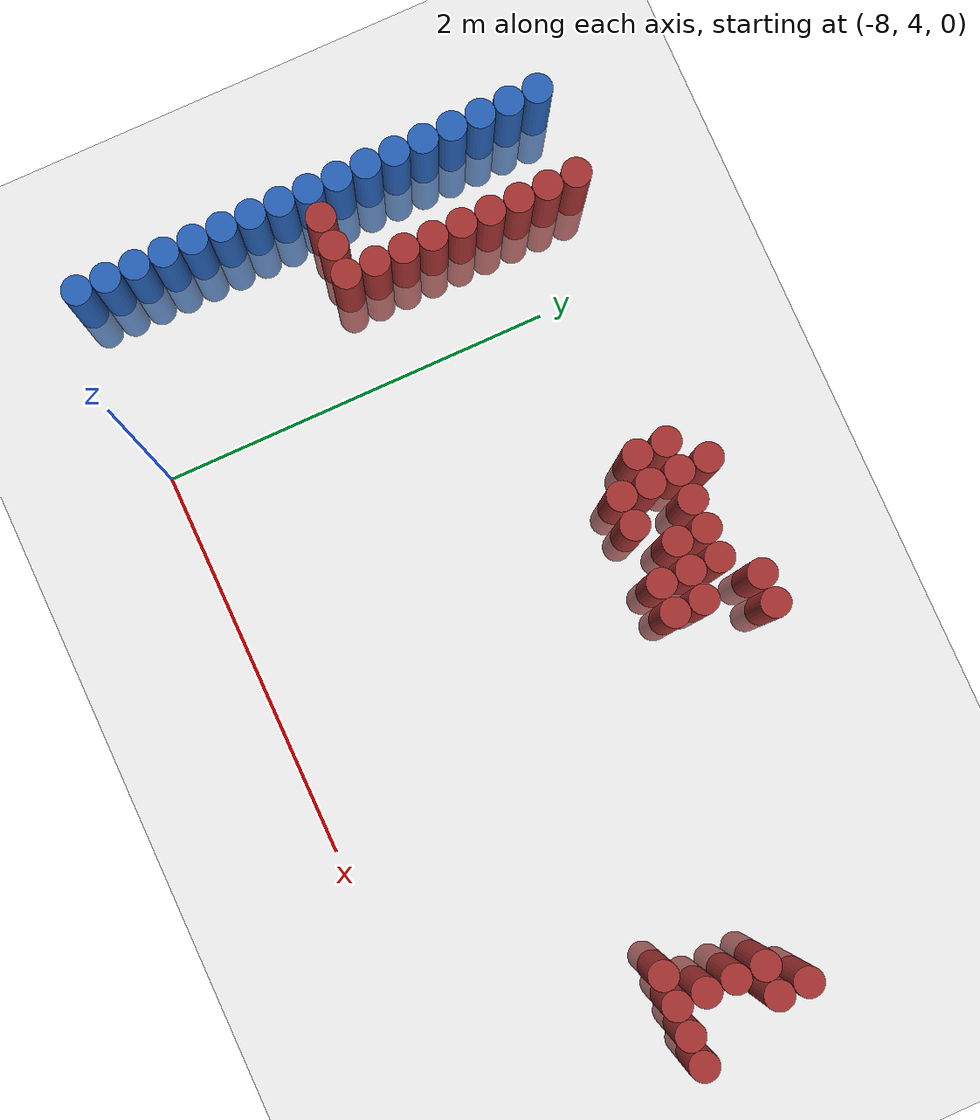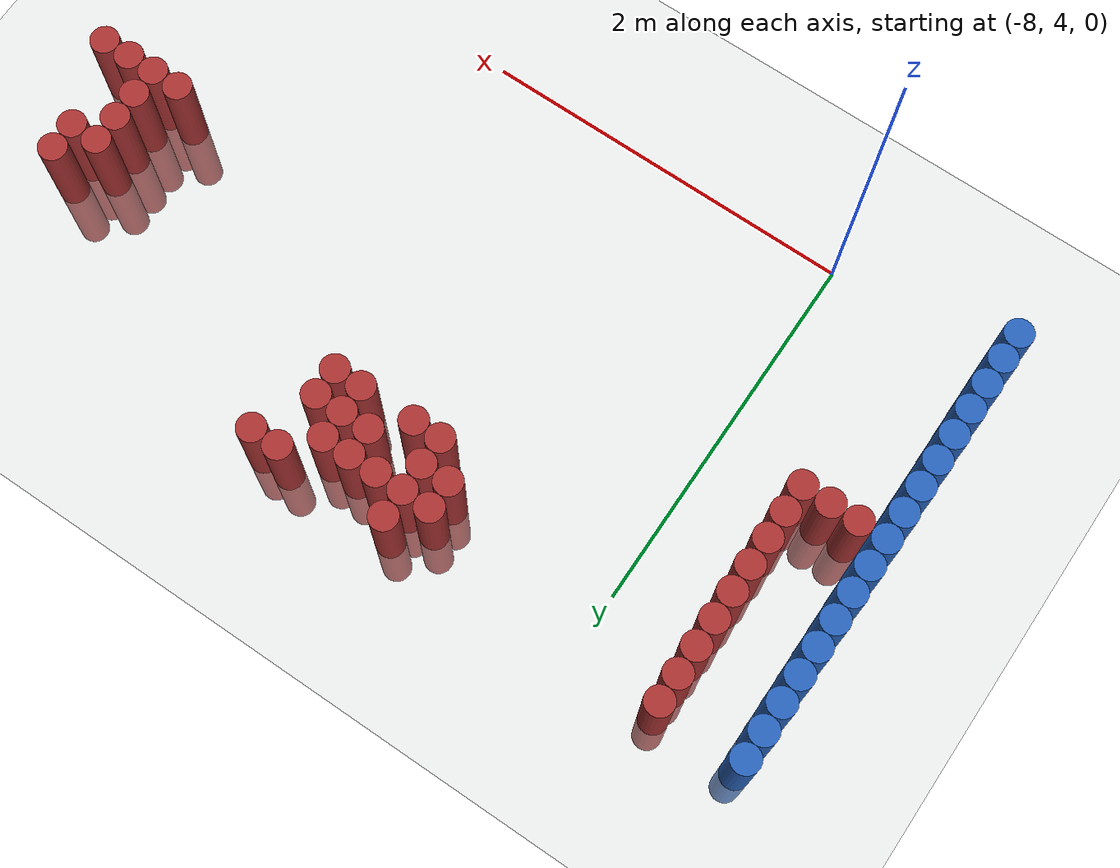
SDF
<sdf version="1.6">
 <world name="default">
  <model name="ground_plane">
   <static>1</static>
   <link name="link">
    <collision name="collision">
     <geometry><plane><normal>0 0 1</normal><size>100 100</size></plane></geometry>
     <surface><friction><ode><mu>100</mu><mu2>50</mu2></ode></friction></surface>
    </collision>
    <visual name="visual">
     <cast_shadows>0</cast_shadows>
     <geometry><plane><normal>0 0 1</normal><size>100 100</size></plane></geometry>
     <material>
      <script><uri>file://media/materials/scripts/gazebo.material</uri><name>Gazebo/Grey</name></script>
     </material>
    </visual>
   </link>
  </model>
  <model name="unit_cylinder_110">
   <static>1</static>
   <pose>-8.925000 3.975000 0.000000 0.000000 0.000000 0.000000</pose>
   <link name="link">
    <inertial>
     <mass>1</mass>
     <inertia><ixx>0.145833</ixx><ixy>0</ixy><ixz>0</ixz><iyy>0.145833</iyy><iyz>0</iyz><izz>0.125</izz></inertia>
    </inertial>
    <collision name="collision">
     <geometry><cylinder><radius>0.075000</radius><length>1</length></cylinder></geometry>
    </collision>
    <visual name="visual">
     <geometry><cylinder><radius>0.075000</radius><length>1</length></cylinder></geometry>
     <material>
      <ambient>0.152000 0.379000 0.720000 1</ambient>
      <diffuse>0.152000 0.379000 0.720000 1</diffuse>
     </material>
     <material>
      <script><name>Gazebo/Grey</name><uri>file://media/materials/scripts/gazebo.material</uri></script>
     </material>
    </visual>
   </link>
  </model>
  <model name="unit_cylinder_112">
   <static>1</static>
   <pose>-8.925000 4.125000 0.000000 0.000000 0.000000 0.000000</pose>
   <link name="link">
    <inertial>
     <mass>1</mass>
     <inertia><ixx>0.145833</ixx><ixy>0</ixy><ixz>0</ixz><iyy>0.145833</iyy><iyz>0</iyz><izz>0.125</izz></inertia>
    </inertial>
    <collision name="collision">
     <geometry><cylinder><radius>0.075000</radius><length>1</length></cylinder></geometry>
    </collision>
    <visual name="visual">
     <geometry><cylinder><radius>0.075000</radius><length>1</length></cylinder></geometry>
     <material>
      <ambient>0.152000 0.379000 0.720000 1</ambient>
      <diffuse>0.152000 0.379000 0.720000 1</diffuse>
     </material>
     <material>
      <script><name>Gazebo/Grey</name><uri>file://media/materials/scripts/gazebo.material</uri></script>
     </material>
    </visual>
   </link>
  </model>
  <model name="unit_cylinder_114">
   <static>1</static>
   <pose>-8.925000 4.275000 0.000000 0.000000 0.000000 0.000000</pose>
   <link name="link">
    <inertial>
     <mass>1</mass>
     <inertia><ixx>0.145833</ixx><ixy>0</ixy><ixz>0</ixz><iyy>0.145833</iyy><iyz>0</iyz><izz>0.125</izz></inertia>
    </inertial>
    <collision name="collision">
     <geometry><cylinder><radius>0.075000</radius><length>1</length></cylinder></geometry>
    </collision>
    <visual name="visual">
     <geometry><cylinder><radius>0.075000</radius><length>1</length></cylinder></geometry>
     <material>
      <ambient>0.152000 0.379000 0.720000 1</ambient>
      <diffuse>0.152000 0.379000 0.720000 1</diffuse>
     </material>
     <material>
      <script><name>Gazebo/Grey</name><uri>file://media/materials/scripts/gazebo.material</uri></script>
     </material>
    </visual>
   </link>
  </model>
  <model name="unit_cylinder_116">
   <static>1</static>
   <pose>-8.925000 4.425000 0.000000 0.000000 0.000000 0.000000</pose>
   <link name="link">
    <inertial>
     <mass>1</mass>
     <inertia><ixx>0.145833</ixx><ixy>0</ixy><ixz>0</ixz><iyy>0.145833</iyy><iyz>0</iyz><izz>0.125</izz></inertia>
    </inertial>
    <collision name="collision">
     <geometry><cylinder><radius>0.075000</radius><length>1</length></cylinder></geometry>
    </collision>
    <visual name="visual">
     <geometry><cylinder><radius>0.075000</radius><length>1</length></cylinder></geometry>
     <material>
      <ambient>0.152000 0.379000 0.720000 1</ambient>
      <diffuse>0.152000 0.379000 0.720000 1</diffuse>
     </material>
     <material>
      <script><name>Gazebo/Grey</name><uri>file://media/materials/scripts/gazebo.material</uri></script>
     </material>
    </visual>
   </link>
  </model>
  <model name="unit_cylinder_118">
   <static>1</static>
   <pose>-8.925000 4.575000 0.000000 0.000000 0.000000 0.000000</pose>
   <link name="link">
    <inertial>
     <mass>1</mass>
     <inertia><ixx>0.145833</ixx><ixy>0</ixy><ixz>0</ixz><iyy>0.145833</iyy><iyz>0</iyz><izz>0.125</izz></inertia>
    </inertial>
    <collision name="collision">
     <geometry><cylinder><radius>0.075000</radius><length>1</length></cylinder></geometry>
    </collision>
    <visual name="visual">
     <geometry><cylinder><radius>0.075000</radius><length>1</length></cylinder></geometry>
     <material>
      <ambient>0.152000 0.379000 0.720000 1</ambient>
      <diffuse>0.152000 0.379000 0.720000 1</diffuse>
     </material>
     <material>
      <script><name>Gazebo/Grey</name><uri>file://media/materials/scripts/gazebo.material</uri></script>
     </material>
    </visual>
   </link>
  </model>
  <model name="unit_cylinder_120">
   <static>1</static>
   <pose>-8.925000 4.725000 0.000000 0.000000 0.000000 0.000000</pose>
   <link name="link">
    <inertial>
     <mass>1</mass>
     <inertia><ixx>0.145833</ixx><ixy>0</ixy><ixz>0</ixz><iyy>0.145833</iyy><iyz>0</iyz><izz>0.125</izz></inertia>
    </inertial>
    <collision name="collision">
     <geometry><cylinder><radius>0.075000</radius><length>1</length></cylinder></geometry>
    </collision>
    <visual name="visual">
     <geometry><cylinder><radius>0.075000</radius><length>1</length></cylinder></geometry>
     <material>
      <ambient>0.152000 0.379000 0.720000 1</ambient>
      <diffuse>0.152000 0.379000 0.720000 1</diffuse>
     </material>
     <material>
      <script><name>Gazebo/Grey</name><uri>file://media/materials/scripts/gazebo.material</uri></script>
     </material>
    </visual>
   </link>
  </model>
  <model name="unit_cylinder_122">
   <static>1</static>
   <pose>-8.925000 4.875000 0.000000 0.000000 0.000000 0.000000</pose>
   <link name="link">
    <inertial>
     <mass>1</mass>
     <inertia><ixx>0.145833</ixx><ixy>0</ixy><ixz>0</ixz><iyy>0.145833</iyy><iyz>0</iyz><izz>0.125</izz></inertia>
    </inertial>
    <collision name="collision">
     <geometry><cylinder><radius>0.075000</radius><length>1</length></cylinder></geometry>
    </collision>
    <visual name="visual">
     <geometry><cylinder><radius>0.075000</radius><length>1</length></cylinder></geometry>
     <material>
      <ambient>0.152000 0.379000 0.720000 1</ambient>
      <diffuse>0.152000 0.379000 0.720000 1</diffuse>
     </material>
     <material>
      <script><name>Gazebo/Grey</name><uri>file://media/materials/scripts/gazebo.material</uri></script>
     </material>
    </visual>
   </link>
  </model>
  <model name="unit_cylinder_124">
   <static>1</static>
   <pose>-8.925000 5.025000 0.000000 0.000000 0.000000 0.000000</pose>
   <link name="link">
    <inertial>
     <mass>1</mass>
     <inertia><ixx>0.145833</ixx><ixy>0</ixy><ixz>0</ixz><iyy>0.145833</iyy><iyz>0</iyz><izz>0.125</izz></inertia>
    </inertial>
    <collision name="collision">
     <geometry><cylinder><radius>0.075000</radius><length>1</length></cylinder></geometry>
    </collision>
    <visual name="visual">
     <geometry><cylinder><radius>0.075000</radius><length>1</length></cylinder></geometry>
     <material>
      <ambient>0.152000 0.379000 0.720000 1</ambient>
      <diffuse>0.152000 0.379000 0.720000 1</diffuse>
     </material>
     <material>
      <script><name>Gazebo/Grey</name><uri>file://media/materials/scripts/gazebo.material</uri></script>
     </material>
    </visual>
   </link>
  </model>
  <model name="unit_cylinder_125">
   <static>1</static>
   <pose>-8.925000 5.175000 0.000000 0.000000 0.000000 0.000000</pose>
   <link name="link">
    <inertial>
     <mass>1</mass>
     <inertia><ixx>0.145833</ixx><ixy>0</ixy><ixz>0</ixz><iyy>0.145833</iyy><iyz>0</iyz><izz>0.125</izz></inertia>
    </inertial>
    <collision name="collision">
     <geometry><cylinder><radius>0.075000</radius><length>1</length></cylinder></geometry>
    </collision>
    <visual name="visual">
     <geometry><cylinder><radius>0.075000</radius><length>1</length></cylinder></geometry>
     <material>
      <ambient>0.152000 0.379000 0.720000 1</ambient>
      <diffuse>0.152000 0.379000 0.720000 1</diffuse>
     </material>
     <material>
      <script><name>Gazebo/Grey</name><uri>file://media/materials/scripts/gazebo.material</uri></script>
     </material>
    </visual>
   </link>
  </model>
  <model name="unit_cylinder_126">
   <static>1</static>
   <pose>-8.925000 5.325000 0.000000 0.000000 0.000000 0.000000</pose>
   <link name="link">
    <inertial>
     <mass>1</mass>
     <inertia><ixx>0.145833</ixx><ixy>0</ixy><ixz>0</ixz><iyy>0.145833</iyy><iyz>0</iyz><izz>0.125</izz></inertia>
    </inertial>
    <collision name="collision">
     <geometry><cylinder><radius>0.075000</radius><length>1</length></cylinder></geometry>
    </collision>
    <visual name="visual">
     <geometry><cylinder><radius>0.075000</radius><length>1</length></cylinder></geometry>
     <material>
      <ambient>0.152000 0.379000 0.720000 1</ambient>
      <diffuse>0.152000 0.379000 0.720000 1</diffuse>
     </material>
     <material>
      <script><name>Gazebo/Grey</name><uri>file://media/materials/scripts/gazebo.material</uri></script>
     </material>
    </visual>
   </link>
  </model>
  <model name="unit_cylinder_127">
   <static>1</static>
   <pose>-8.925000 5.475000 0.000000 0.000000 0.000000 0.000000</pose>
   <link name="link">
    <inertial>
     <mass>1</mass>
     <inertia><ixx>0.145833</ixx><ixy>0</ixy><ixz>0</ixz><iyy>0.145833</iyy><iyz>0</iyz><izz>0.125</izz></inertia>
    </inertial>
    <collision name="collision">
     <geometry><cylinder><radius>0.075000</radius><length>1</length></cylinder></geometry>
    </collision>
    <visual name="visual">
     <geometry><cylinder><radius>0.075000</radius><length>1</length></cylinder></geometry>
     <material>
      <ambient>0.152000 0.379000 0.720000 1</ambient>
      <diffuse>0.152000 0.379000 0.720000 1</diffuse>
     </material>
     <material>
      <script><name>Gazebo/Grey</name><uri>file://media/materials/scripts/gazebo.material</uri></script>
     </material>
    </visual>
   </link>
  </model>
  <model name="unit_cylinder_128">
   <static>1</static>
   <pose>-8.925000 5.625000 0.000000 0.000000 0.000000 0.000000</pose>
   <link name="link">
    <inertial>
     <mass>1</mass>
     <inertia><ixx>0.145833</ixx><ixy>0</ixy><ixz>0</ixz><iyy>0.145833</iyy><iyz>0</iyz><izz>0.125</izz></inertia>
    </inertial>
    <collision name="collision">
     <geometry><cylinder><radius>0.075000</radius><length>1</length></cylinder></geometry>
    </collision>
    <visual name="visual">
     <geometry><cylinder><radius>0.075000</radius><length>1</length></cylinder></geometry>
     <material>
      <ambient>0.152000 0.379000 0.720000 1</ambient>
      <diffuse>0.152000 0.379000 0.720000 1</diffuse>
     </material>
     <material>
      <script><name>Gazebo/Grey</name><uri>file://media/materials/scripts/gazebo.material</uri></script>
     </material>
    </visual>
   </link>
  </model>
  <model name="unit_cylinder_129">
   <static>1</static>
   <pose>-8.925000 5.775000 0.000000 0.000000 0.000000 0.000000</pose>
   <link name="link">
    <inertial>
     <mass>1</mass>
     <inertia><ixx>0.145833</ixx><ixy>0</ixy><ixz>0</ixz><iyy>0.145833</iyy><iyz>0</iyz><izz>0.125</izz></inertia>
    </inertial>
    <collision name="collision">
     <geometry><cylinder><radius>0.075000</radius><length>1</length></cylinder></geometry>
    </collision>
    <visual name="visual">
     <geometry><cylinder><radius>0.075000</radius><length>1</length></cylinder></geometry>
     <material>
      <ambient>0.152000 0.379000 0.720000 1</ambient>
      <diffuse>0.152000 0.379000 0.720000 1</diffuse>
     </material>
     <material>
      <script><name>Gazebo/Grey</name><uri>file://media/materials/scripts/gazebo.material</uri></script>
     </material>
    </visual>
   </link>
  </model>
  <model name="unit_cylinder_130">
   <static>1</static>
   <pose>-8.925000 5.925000 0.000000 0.000000 0.000000 0.000000</pose>
   <link name="link">
    <inertial>
     <mass>1</mass>
     <inertia><ixx>0.145833</ixx><ixy>0</ixy><ixz>0</ixz><iyy>0.145833</iyy><iyz>0</iyz><izz>0.125</izz></inertia>
    </inertial>
    <collision name="collision">
     <geometry><cylinder><radius>0.075000</radius><length>1</length></cylinder></geometry>
    </collision>
    <visual name="visual">
     <geometry><cylinder><radius>0.075000</radius><length>1</length></cylinder></geometry>
     <material>
      <ambient>0.152000 0.379000 0.720000 1</ambient>
      <diffuse>0.152000 0.379000 0.720000 1</diffuse>
     </material>
     <material>
      <script><name>Gazebo/Grey</name><uri>file://media/materials/scripts/gazebo.material</uri></script>
     </material>
    </visual>
   </link>
  </model>
  <model name="unit_cylinder_131">
   <static>1</static>
   <pose>-8.925000 6.075000 0.000000 0.000000 0.000000 0.000000</pose>
   <link name="link">
    <inertial>
     <mass>1</mass>
     <inertia><ixx>0.145833</ixx><ixy>0</ixy><ixz>0</ixz><iyy>0.145833</iyy><iyz>0</iyz><izz>0.125</izz></inertia>
    </inertial>
    <collision name="collision">
     <geometry><cylinder><radius>0.075000</radius><length>1</length></cylinder></geometry>
    </collision>
    <visual name="visual">
     <geometry><cylinder><radius>0.075000</radius><length>1</length></cylinder></geometry>
     <material>
      <ambient>0.152000 0.379000 0.720000 1</ambient>
      <diffuse>0.152000 0.379000 0.720000 1</diffuse>
     </material>
     <material>
      <script><name>Gazebo/Grey</name><uri>file://media/materials/scripts/gazebo.material</uri></script>
     </material>
    </visual>
   </link>
  </model>
  <model name="unit_cylinder_132">
   <static>1</static>
   <pose>-8.925000 6.225000 0.000000 0.000000 0.000000 0.000000</pose>
   <link name="link">
    <inertial>
     <mass>1</mass>
     <inertia><ixx>0.145833</ixx><ixy>0</ixy><ixz>0</ixz><iyy>0.145833</iyy><iyz>0</iyz><izz>0.125</izz></inertia>
    </inertial>
    <collision name="collision">
     <geometry><cylinder><radius>0.075000</radius><length>1</length></cylinder></geometry>
    </collision>
    <visual name="visual">
     <geometry><cylinder><radius>0.075000</radius><length>1</length></cylinder></geometry>
     <material>
      <ambient>0.152000 0.379000 0.720000 1</ambient>
      <diffuse>0.152000 0.379000 0.720000 1</diffuse>
     </material>
     <material>
      <script><name>Gazebo/Grey</name><uri>file://media/materials/scripts/gazebo.material</uri></script>
     </material>
    </visual>
   </link>
  </model>
  <model name="unit_cylinder_133">
   <static>1</static>
   <pose>-8.925000 6.375000 0.000000 0.000000 0.000000 0.000000</pose>
   <link name="link">
    <inertial>
     <mass>1</mass>
     <inertia><ixx>0.145833</ixx><ixy>0</ixy><ixz>0</ixz><iyy>0.145833</iyy><iyz>0</iyz><izz>0.125</izz></inertia>
    </inertial>
    <collision name="collision">
     <geometry><cylinder><radius>0.075000</radius><length>1</length></cylinder></geometry>
    </collision>
    <visual name="visual">
     <geometry><cylinder><radius>0.075000</radius><length>1</length></cylinder></geometry>
     <material>
      <ambient>0.152000 0.379000 0.720000 1</ambient>
      <diffuse>0.152000 0.379000 0.720000 1</diffuse>
     </material>
     <material>
      <script><name>Gazebo/Grey</name><uri>file://media/materials/scripts/gazebo.material</uri></script>
     </material>
    </visual>
   </link>
  </model>
  <model name="unit_cylinder_155">
   <static>1</static>
   <pose>-8.775000 5.175000 0.000000 0.000000 0.000000 0.000000</pose>
   <link name="link">
    <inertial>
     <mass>1</mass>
     <inertia><ixx>0.145833</ixx><ixy>0</ixy><ixz>0</ixz><iyy>0.145833</iyy><iyz>0</iyz><izz>0.125</izz></inertia>
    </inertial>
    <collision name="collision">
     <geometry><cylinder><radius>0.075000</radius><length>1</length></cylinder></geometry>
    </collision>
    <visual name="visual">
     <geometry><cylinder><radius>0.075000</radius><length>1</length></cylinder></geometry>
     <material>
      <ambient>0.648000 0.192000 0.192000 1</ambient>
      <diffuse>0.648000 0.192000 0.192000 1</diffuse>
     </material>
     <material>
      <script><name>Gazebo/Grey</name><uri>file://media/materials/scripts/gazebo.material</uri></script>
     </material>
    </visual>
   </link>
  </model>
  <model name="unit_cylinder_157">
   <static>1</static>
   <pose>-8.625000 5.175000 0.000000 0.000000 0.000000 0.000000</pose>
   <link name="link">
    <inertial>
     <mass>1</mass>
     <inertia><ixx>0.145833</ixx><ixy>0</ixy><ixz>0</ixz><iyy>0.145833</iyy><iyz>0</iyz><izz>0.125</izz></inertia>
    </inertial>
    <collision name="collision">
     <geometry><cylinder><radius>0.075000</radius><length>1</length></cylinder></geometry>
    </collision>
    <visual name="visual">
     <geometry><cylinder><radius>0.075000</radius><length>1</length></cylinder></geometry>
     <material>
      <ambient>0.648000 0.192000 0.192000 1</ambient>
      <diffuse>0.648000 0.192000 0.192000 1</diffuse>
     </material>
     <material>
      <script><name>Gazebo/Grey</name><uri>file://media/materials/scripts/gazebo.material</uri></script>
     </material>
    </visual>
   </link>
  </model>
  <model name="unit_cylinder_159">
   <static>1</static>
   <pose>-8.475000 5.175000 0.000000 0.000000 0.000000 0.000000</pose>
   <link name="link">
    <inertial>
     <mass>1</mass>
     <inertia><ixx>0.145833</ixx><ixy>0</ixy><ixz>0</ixz><iyy>0.145833</iyy><iyz>0</iyz><izz>0.125</izz></inertia>
    </inertial>
    <collision name="collision">
     <geometry><cylinder><radius>0.075000</radius><length>1</length></cylinder></geometry>
    </collision>
    <visual name="visual">
     <geometry><cylinder><radius>0.075000</radius><length>1</length></cylinder></geometry>
     <material>
      <ambient>0.648000 0.192000 0.192000 1</ambient>
      <diffuse>0.648000 0.192000 0.192000 1</diffuse>
     </material>
     <material>
      <script><name>Gazebo/Grey</name><uri>file://media/materials/scripts/gazebo.material</uri></script>
     </material>
    </visual>
   </link>
  </model>
  <model name="unit_cylinder_160">
   <static>1</static>
   <pose>-8.475000 5.325000 0.000000 0.000000 0.000000 0.000000</pose>
   <link name="link">
    <inertial>
     <mass>1</mass>
     <inertia><ixx>0.145833</ixx><ixy>0</ixy><ixz>0</ixz><iyy>0.145833</iyy><iyz>0</iyz><izz>0.125</izz></inertia>
    </inertial>
    <collision name="collision">
     <geometry><cylinder><radius>0.075000</radius><length>1</length></cylinder></geometry>
    </collision>
    <visual name="visual">
     <geometry><cylinder><radius>0.075000</radius><length>1</length></cylinder></geometry>
     <material>
      <ambient>0.648000 0.192000 0.192000 1</ambient>
      <diffuse>0.648000 0.192000 0.192000 1</diffuse>
     </material>
     <material>
      <script><name>Gazebo/Grey</name><uri>file://media/materials/scripts/gazebo.material</uri></script>
     </material>
    </visual>
   </link>
  </model>
  <model name="unit_cylinder_161">
   <static>1</static>
   <pose>-8.475000 5.475000 0.000000 0.000000 0.000000 0.000000</pose>
   <link name="link">
    <inertial>
     <mass>1</mass>
     <inertia><ixx>0.145833</ixx><ixy>0</ixy><ixz>0</ixz><iyy>0.145833</iyy><iyz>0</iyz><izz>0.125</izz></inertia>
    </inertial>
    <collision name="collision">
     <geometry><cylinder><radius>0.075000</radius><length>1</length></cylinder></geometry>
    </collision>
    <visual name="visual">
     <geometry><cylinder><radius>0.075000</radius><length>1</length></cylinder></geometry>
     <material>
      <ambient>0.648000 0.192000 0.192000 1</ambient>
      <diffuse>0.648000 0.192000 0.192000 1</diffuse>
     </material>
     <material>
      <script><name>Gazebo/Grey</name><uri>file://media/materials/scripts/gazebo.material</uri></script>
     </material>
    </visual>
   </link>
  </model>
  <model name="unit_cylinder_162">
   <static>1</static>
   <pose>-8.475000 5.625000 0.000000 0.000000 0.000000 0.000000</pose>
   <link name="link">
    <inertial>
     <mass>1</mass>
     <inertia><ixx>0.145833</ixx><ixy>0</ixy><ixz>0</ixz><iyy>0.145833</iyy><iyz>0</iyz><izz>0.125</izz></inertia>
    </inertial>
    <collision name="collision">
     <geometry><cylinder><radius>0.075000</radius><length>1</length></cylinder></geometry>
    </collision>
    <visual name="visual">
     <geometry><cylinder><radius>0.075000</radius><length>1</length></cylinder></geometry>
     <material>
      <ambient>0.648000 0.192000 0.192000 1</ambient>
      <diffuse>0.648000 0.192000 0.192000 1</diffuse>
     </material>
     <material>
      <script><name>Gazebo/Grey</name><uri>file://media/materials/scripts/gazebo.material</uri></script>
     </material>
    </visual>
   </link>
  </model>
  <model name="unit_cylinder_163">
   <static>1</static>
   <pose>-8.475000 5.775000 0.000000 0.000000 0.000000 0.000000</pose>
   <link name="link">
    <inertial>
     <mass>1</mass>
     <inertia><ixx>0.145833</ixx><ixy>0</ixy><ixz>0</ixz><iyy>0.145833</iyy><iyz>0</iyz><izz>0.125</izz></inertia>
    </inertial>
    <collision name="collision">
     <geometry><cylinder><radius>0.075000</radius><length>1</length></cylinder></geometry>
    </collision>
    <visual name="visual">
     <geometry><cylinder><radius>0.075000</radius><length>1</length></cylinder></geometry>
     <material>
      <ambient>0.648000 0.192000 0.192000 1</ambient>
      <diffuse>0.648000 0.192000 0.192000 1</diffuse>
     </material>
     <material>
      <script><name>Gazebo/Grey</name><uri>file://media/materials/scripts/gazebo.material</uri></script>
     </material>
    </visual>
   </link>
  </model>
  <model name="unit_cylinder_164">
   <static>1</static>
   <pose>-8.475000 5.925000 0.000000 0.000000 0.000000 0.000000</pose>
   <link name="link">
    <inertial>
     <mass>1</mass>
     <inertia><ixx>0.145833</ixx><ixy>0</ixy><ixz>0</ixz><iyy>0.145833</iyy><iyz>0</iyz><izz>0.125</izz></inertia>
    </inertial>
    <collision name="collision">
     <geometry><cylinder><radius>0.075000</radius><length>1</length></cylinder></geometry>
    </collision>
    <visual name="visual">
     <geometry><cylinder><radius>0.075000</radius><length>1</length></cylinder></geometry>
     <material>
      <ambient>0.648000 0.192000 0.192000 1</ambient>
      <diffuse>0.648000 0.192000 0.192000 1</diffuse>
     </material>
     <material>
      <script><name>Gazebo/Grey</name><uri>file://media/materials/scripts/gazebo.material</uri></script>
     </material>
    </visual>
   </link>
  </model>
  <model name="unit_cylinder_165">
   <static>1</static>
   <pose>-8.475000 6.075000 0.000000 0.000000 0.000000 0.000000</pose>
   <link name="link">
    <inertial>
     <mass>1</mass>
     <inertia><ixx>0.145833</ixx><ixy>0</ixy><ixz>0</ixz><iyy>0.145833</iyy><iyz>0</iyz><izz>0.125</izz></inertia>
    </inertial>
    <collision name="collision">
     <geometry><cylinder><radius>0.075000</radius><length>1</length></cylinder></geometry>
    </collision>
    <visual name="visual">
     <geometry><cylinder><radius>0.075000</radius><length>1</length></cylinder></geometry>
     <material>
      <ambient>0.648000 0.192000 0.192000 1</ambient>
      <diffuse>0.648000 0.192000 0.192000 1</diffuse>
     </material>
     <material>
      <script><name>Gazebo/Grey</name><uri>file://media/materials/scripts/gazebo.material</uri></script>
     </material>
    </visual>
   </link>
  </model>
  <model name="unit_cylinder_166">
   <static>1</static>
   <pose>-8.475000 6.225000 0.000000 0.000000 0.000000 0.000000</pose>
   <link name="link">
    <inertial>
     <mass>1</mass>
     <inertia><ixx>0.145833</ixx><ixy>0</ixy><ixz>0</ixz><iyy>0.145833</iyy><iyz>0</iyz><izz>0.125</izz></inertia>
    </inertial>
    <collision name="collision">
     <geometry><cylinder><radius>0.075000</radius><length>1</length></cylinder></geometry>
    </collision>
    <visual name="visual">
     <geometry><cylinder><radius>0.075000</radius><length>1</length></cylinder></geometry>
     <material>
      <ambient>0.648000 0.192000 0.192000 1</ambient>
      <diffuse>0.648000 0.192000 0.192000 1</diffuse>
     </material>
     <material>
      <script><name>Gazebo/Grey</name><uri>file://media/materials/scripts/gazebo.material</uri></script>
     </material>
    </visual>
   </link>
  </model>
  <model name="unit_cylinder_167">
   <static>1</static>
   <pose>-8.475000 6.375000 0.000000 0.000000 0.000000 0.000000</pose>
   <link name="link">
    <inertial>
     <mass>1</mass>
     <inertia><ixx>0.145833</ixx><ixy>0</ixy><ixz>0</ixz><iyy>0.145833</iyy><iyz>0</iyz><izz>0.125</izz></inertia>
    </inertial>
    <collision name="collision">
     <geometry><cylinder><radius>0.075000</radius><length>1</length></cylinder></geometry>
    </collision>
    <visual name="visual">
     <geometry><cylinder><radius>0.075000</radius><length>1</length></cylinder></geometry>
     <material>
      <ambient>0.648000 0.192000 0.192000 1</ambient>
      <diffuse>0.648000 0.192000 0.192000 1</diffuse>
     </material>
     <material>
      <script><name>Gazebo/Grey</name><uri>file://media/materials/scripts/gazebo.material</uri></script>
     </material>
    </visual>
   </link>
  </model>
  <model name="unit_cylinder_204">
   <static>1</static>
   <pose>-7.125000 6.075000 0.000000 0.000000 0.000000 0.000000</pose>
   <link name="link">
    <inertial>
     <mass>1</mass>
     <inertia><ixx>0.145833</ixx><ixy>0</ixy><ixz>0</ixz><iyy>0.145833</iyy><iyz>0</iyz><izz>0.125</izz></inertia>
    </inertial>
    <collision name="collision">
     <geometry><cylinder><radius>0.075000</radius><length>1</length></cylinder></geometry>
    </collision>
    <visual name="visual">
     <geometry><cylinder><radius>0.075000</radius><length>1</length></cylinder></geometry>
     <material>
      <ambient>0.648000 0.192000 0.192000 1</ambient>
      <diffuse>0.648000 0.192000 0.192000 1</diffuse>
     </material>
     <material>
      <script><name>Gazebo/Grey</name><uri>file://media/materials/scripts/gazebo.material</uri></script>
     </material>
    </visual>
   </link>
  </model>
  <model name="unit_cylinder_205">
   <static>1</static>
   <pose>-7.125000 6.225000 0.000000 0.000000 0.000000 0.000000</pose>
   <link name="link">
    <inertial>
     <mass>1</mass>
     <inertia><ixx>0.145833</ixx><ixy>0</ixy><ixz>0</ixz><iyy>0.145833</iyy><iyz>0</iyz><izz>0.125</izz></inertia>
    </inertial>
    <collision name="collision">
     <geometry><cylinder><radius>0.075000</radius><length>1</length></cylinder></geometry>
    </collision>
    <visual name="visual">
     <geometry><cylinder><radius>0.075000</radius><length>1</length></cylinder></geometry>
     <material>
      <ambient>0.648000 0.192000 0.192000 1</ambient>
      <diffuse>0.648000 0.192000 0.192000 1</diffuse>
     </material>
     <material>
      <script><name>Gazebo/Grey</name><uri>file://media/materials/scripts/gazebo.material</uri></script>
     </material>
    </visual>
   </link>
  </model>
  <model name="unit_cylinder_209">
   <static>1</static>
   <pose>-6.975000 5.925000 0.000000 0.000000 0.000000 0.000000</pose>
   <link name="link">
    <inertial>
     <mass>1</mass>
     <inertia><ixx>0.145833</ixx><ixy>0</ixy><ixz>0</ixz><iyy>0.145833</iyy><iyz>0</iyz><izz>0.125</izz></inertia>
    </inertial>
    <collision name="collision">
     <geometry><cylinder><radius>0.075000</radius><length>1</length></cylinder></geometry>
    </collision>
    <visual name="visual">
     <geometry><cylinder><radius>0.075000</radius><length>1</length></cylinder></geometry>
     <material>
      <ambient>0.648000 0.192000 0.192000 1</ambient>
      <diffuse>0.648000 0.192000 0.192000 1</diffuse>
     </material>
     <material>
      <script><name>Gazebo/Grey</name><uri>file://media/materials/scripts/gazebo.material</uri></script>
     </material>
    </visual>
   </link>
  </model>
  <model name="unit_cylinder_210">
   <static>1</static>
   <pose>-6.975000 6.075000 0.000000 0.000000 0.000000 0.000000</pose>
   <link name="link">
    <inertial>
     <mass>1</mass>
     <inertia><ixx>0.145833</ixx><ixy>0</ixy><ixz>0</ixz><iyy>0.145833</iyy><iyz>0</iyz><izz>0.125</izz></inertia>
    </inertial>
    <collision name="collision">
     <geometry><cylinder><radius>0.075000</radius><length>1</length></cylinder></geometry>
    </collision>
    <visual name="visual">
     <geometry><cylinder><radius>0.075000</radius><length>1</length></cylinder></geometry>
     <material>
      <ambient>0.648000 0.192000 0.192000 1</ambient>
      <diffuse>0.648000 0.192000 0.192000 1</diffuse>
     </material>
     <material>
      <script><name>Gazebo/Grey</name><uri>file://media/materials/scripts/gazebo.material</uri></script>
     </material>
    </visual>
   </link>
  </model>
  <model name="unit_cylinder_211">
   <static>1</static>
   <pose>-6.975000 6.225000 0.000000 0.000000 0.000000 0.000000</pose>
   <link name="link">
    <inertial>
     <mass>1</mass>
     <inertia><ixx>0.145833</ixx><ixy>0</ixy><ixz>0</ixz><iyy>0.145833</iyy><iyz>0</iyz><izz>0.125</izz></inertia>
    </inertial>
    <collision name="collision">
     <geometry><cylinder><radius>0.075000</radius><length>1</length></cylinder></geometry>
    </collision>
    <visual name="visual">
     <geometry><cylinder><radius>0.075000</radius><length>1</length></cylinder></geometry>
     <material>
      <ambient>0.648000 0.192000 0.192000 1</ambient>
      <diffuse>0.648000 0.192000 0.192000 1</diffuse>
     </material>
     <material>
      <script><name>Gazebo/Grey</name><uri>file://media/materials/scripts/gazebo.material</uri></script>
     </material>
    </visual>
   </link>
  </model>
  <model name="unit_cylinder_212">
   <static>1</static>
   <pose>-6.975000 6.375000 0.000000 0.000000 0.000000 0.000000</pose>
   <link name="link">
    <inertial>
     <mass>1</mass>
     <inertia><ixx>0.145833</ixx><ixy>0</ixy><ixz>0</ixz><iyy>0.145833</iyy><iyz>0</iyz><izz>0.125</izz></inertia>
    </inertial>
    <collision name="collision">
     <geometry><cylinder><radius>0.075000</radius><length>1</length></cylinder></geometry>
    </collision>
    <visual name="visual">
     <geometry><cylinder><radius>0.075000</radius><length>1</length></cylinder></geometry>
     <material>
      <ambient>0.648000 0.192000 0.192000 1</ambient>
      <diffuse>0.648000 0.192000 0.192000 1</diffuse>
     </material>
     <material>
      <script><name>Gazebo/Grey</name><uri>file://media/materials/scripts/gazebo.material</uri></script>
     </material>
    </visual>
   </link>
  </model>
  <model name="unit_cylinder_215">
   <static>1</static>
   <pose>-6.825000 5.925000 0.000000 0.000000 0.000000 0.000000</pose>
   <link name="link">
    <inertial>
     <mass>1</mass>
     <inertia><ixx>0.145833</ixx><ixy>0</ixy><ixz>0</ixz><iyy>0.145833</iyy><iyz>0</iyz><izz>0.125</izz></inertia>
    </inertial>
    <collision name="collision">
     <geometry><cylinder><radius>0.075000</radius><length>1</length></cylinder></geometry>
    </collision>
    <visual name="visual">
     <geometry><cylinder><radius>0.075000</radius><length>1</length></cylinder></geometry>
     <material>
      <ambient>0.648000 0.192000 0.192000 1</ambient>
      <diffuse>0.648000 0.192000 0.192000 1</diffuse>
     </material>
     <material>
      <script><name>Gazebo/Grey</name><uri>file://media/materials/scripts/gazebo.material</uri></script>
     </material>
    </visual>
   </link>
  </model>
  <model name="unit_cylinder_216">
   <static>1</static>
   <pose>-6.825000 6.225000 0.000000 0.000000 0.000000 0.000000</pose>
   <link name="link">
    <inertial>
     <mass>1</mass>
     <inertia><ixx>0.145833</ixx><ixy>0</ixy><ixz>0</ixz><iyy>0.145833</iyy><iyz>0</iyz><izz>0.125</izz></inertia>
    </inertial>
    <collision name="collision">
     <geometry><cylinder><radius>0.075000</radius><length>1</length></cylinder></geometry>
    </collision>
    <visual name="visual">
     <geometry><cylinder><radius>0.075000</radius><length>1</length></cylinder></geometry>
     <material>
      <ambient>0.648000 0.192000 0.192000 1</ambient>
      <diffuse>0.648000 0.192000 0.192000 1</diffuse>
     </material>
     <material>
      <script><name>Gazebo/Grey</name><uri>file://media/materials/scripts/gazebo.material</uri></script>
     </material>
    </visual>
   </link>
  </model>
  <model name="unit_cylinder_222">
   <static>1</static>
   <pose>-6.675000 6.075000 0.000000 0.000000 0.000000 0.000000</pose>
   <link name="link">
    <inertial>
     <mass>1</mass>
     <inertia><ixx>0.145833</ixx><ixy>0</ixy><ixz>0</ixz><iyy>0.145833</iyy><iyz>0</iyz><izz>0.125</izz></inertia>
    </inertial>
    <collision name="collision">
     <geometry><cylinder><radius>0.075000</radius><length>1</length></cylinder></geometry>
    </collision>
    <visual name="visual">
     <geometry><cylinder><radius>0.075000</radius><length>1</length></cylinder></geometry>
     <material>
      <ambient>0.648000 0.192000 0.192000 1</ambient>
      <diffuse>0.648000 0.192000 0.192000 1</diffuse>
     </material>
     <material>
      <script><name>Gazebo/Grey</name><uri>file://media/materials/scripts/gazebo.material</uri></script>
     </material>
    </visual>
   </link>
  </model>
  <model name="unit_cylinder_223">
   <static>1</static>
   <pose>-6.675000 6.225000 0.000000 0.000000 0.000000 0.000000</pose>
   <link name="link">
    <inertial>
     <mass>1</mass>
     <inertia><ixx>0.145833</ixx><ixy>0</ixy><ixz>0</ixz><iyy>0.145833</iyy><iyz>0</iyz><izz>0.125</izz></inertia>
    </inertial>
    <collision name="collision">
     <geometry><cylinder><radius>0.075000</radius><length>1</length></cylinder></geometry>
    </collision>
    <visual name="visual">
     <geometry><cylinder><radius>0.075000</radius><length>1</length></cylinder></geometry>
     <material>
      <ambient>0.648000 0.192000 0.192000 1</ambient>
      <diffuse>0.648000 0.192000 0.192000 1</diffuse>
     </material>
     <material>
      <script><name>Gazebo/Grey</name><uri>file://media/materials/scripts/gazebo.material</uri></script>
     </material>
    </visual>
   </link>
  </model>
  <model name="unit_cylinder_227">
   <static>1</static>
   <pose>-6.525000 5.925000 0.000000 0.000000 0.000000 0.000000</pose>
   <link name="link">
    <inertial>
     <mass>1</mass>
     <inertia><ixx>0.145833</ixx><ixy>0</ixy><ixz>0</ixz><iyy>0.145833</iyy><iyz>0</iyz><izz>0.125</izz></inertia>
    </inertial>
    <collision name="collision">
     <geometry><cylinder><radius>0.075000</radius><length>1</length></cylinder></geometry>
    </collision>
    <visual name="visual">
     <geometry><cylinder><radius>0.075000</radius><length>1</length></cylinder></geometry>
     <material>
      <ambient>0.648000 0.192000 0.192000 1</ambient>
      <diffuse>0.648000 0.192000 0.192000 1</diffuse>
     </material>
     <material>
      <script><name>Gazebo/Grey</name><uri>file://media/materials/scripts/gazebo.material</uri></script>
     </material>
    </visual>
   </link>
  </model>
  <model name="unit_cylinder_228">
   <static>1</static>
   <pose>-6.525000 6.075000 0.000000 0.000000 0.000000 0.000000</pose>
   <link name="link">
    <inertial>
     <mass>1</mass>
     <inertia><ixx>0.145833</ixx><ixy>0</ixy><ixz>0</ixz><iyy>0.145833</iyy><iyz>0</iyz><izz>0.125</izz></inertia>
    </inertial>
    <collision name="collision">
     <geometry><cylinder><radius>0.075000</radius><length>1</length></cylinder></geometry>
    </collision>
    <visual name="visual">
     <geometry><cylinder><radius>0.075000</radius><length>1</length></cylinder></geometry>
     <material>
      <ambient>0.648000 0.192000 0.192000 1</ambient>
      <diffuse>0.648000 0.192000 0.192000 1</diffuse>
     </material>
     <material>
      <script><name>Gazebo/Grey</name><uri>file://media/materials/scripts/gazebo.material</uri></script>
     </material>
    </visual>
   </link>
  </model>
  <model name="unit_cylinder_229">
   <static>1</static>
   <pose>-6.525000 6.225000 0.000000 0.000000 0.000000 0.000000</pose>
   <link name="link">
    <inertial>
     <mass>1</mass>
     <inertia><ixx>0.145833</ixx><ixy>0</ixy><ixz>0</ixz><iyy>0.145833</iyy><iyz>0</iyz><izz>0.125</izz></inertia>
    </inertial>
    <collision name="collision">
     <geometry><cylinder><radius>0.075000</radius><length>1</length></cylinder></geometry>
    </collision>
    <visual name="visual">
     <geometry><cylinder><radius>0.075000</radius><length>1</length></cylinder></geometry>
     <material>
      <ambient>0.648000 0.192000 0.192000 1</ambient>
      <diffuse>0.648000 0.192000 0.192000 1</diffuse>
     </material>
     <material>
      <script><name>Gazebo/Grey</name><uri>file://media/materials/scripts/gazebo.material</uri></script>
     </material>
    </visual>
   </link>
  </model>
  <model name="unit_cylinder_232">
   <static>1</static>
   <pose>-6.375000 5.925000 0.000000 0.000000 0.000000 0.000000</pose>
   <link name="link">
    <inertial>
     <mass>1</mass>
     <inertia><ixx>0.145833</ixx><ixy>0</ixy><ixz>0</ixz><iyy>0.145833</iyy><iyz>0</iyz><izz>0.125</izz></inertia>
    </inertial>
    <collision name="collision">
     <geometry><cylinder><radius>0.075000</radius><length>1</length></cylinder></geometry>
    </collision>
    <visual name="visual">
     <geometry><cylinder><radius>0.075000</radius><length>1</length></cylinder></geometry>
     <material>
      <ambient>0.648000 0.192000 0.192000 1</ambient>
      <diffuse>0.648000 0.192000 0.192000 1</diffuse>
     </material>
     <material>
      <script><name>Gazebo/Grey</name><uri>file://media/materials/scripts/gazebo.material</uri></script>
     </material>
    </visual>
   </link>
  </model>
  <model name="unit_cylinder_233">
   <static>1</static>
   <pose>-6.375000 6.075000 0.000000 0.000000 0.000000 0.000000</pose>
   <link name="link">
    <inertial>
     <mass>1</mass>
     <inertia><ixx>0.145833</ixx><ixy>0</ixy><ixz>0</ixz><iyy>0.145833</iyy><iyz>0</iyz><izz>0.125</izz></inertia>
    </inertial>
    <collision name="collision">
     <geometry><cylinder><radius>0.075000</radius><length>1</length></cylinder></geometry>
    </collision>
    <visual name="visual">
     <geometry><cylinder><radius>0.075000</radius><length>1</length></cylinder></geometry>
     <material>
      <ambient>0.648000 0.192000 0.192000 1</ambient>
      <diffuse>0.648000 0.192000 0.192000 1</diffuse>
     </material>
     <material>
      <script><name>Gazebo/Grey</name><uri>file://media/materials/scripts/gazebo.material</uri></script>
     </material>
    </visual>
   </link>
  </model>
  <model name="unit_cylinder_234">
   <static>1</static>
   <pose>-6.375000 6.375000 0.000000 0.000000 0.000000 0.000000</pose>
   <link name="link">
    <inertial>
     <mass>1</mass>
     <inertia><ixx>0.145833</ixx><ixy>0</ixy><ixz>0</ixz><iyy>0.145833</iyy><iyz>0</iyz><izz>0.125</izz></inertia>
    </inertial>
    <collision name="collision">
     <geometry><cylinder><radius>0.075000</radius><length>1</length></cylinder></geometry>
    </collision>
    <visual name="visual">
     <geometry><cylinder><radius>0.075000</radius><length>1</length></cylinder></geometry>
     <material>
      <ambient>0.648000 0.192000 0.192000 1</ambient>
      <diffuse>0.648000 0.192000 0.192000 1</diffuse>
     </material>
     <material>
      <script><name>Gazebo/Grey</name><uri>file://media/materials/scripts/gazebo.material</uri></script>
     </material>
    </visual>
   </link>
  </model>
  <model name="unit_cylinder_238">
   <static>1</static>
   <pose>-6.225000 6.375000 0.000000 0.000000 0.000000 0.000000</pose>
   <link name="link">
    <inertial>
     <mass>1</mass>
     <inertia><ixx>0.145833</ixx><ixy>0</ixy><ixz>0</ixz><iyy>0.145833</iyy><iyz>0</iyz><izz>0.125</izz></inertia>
    </inertial>
    <collision name="collision">
     <geometry><cylinder><radius>0.075000</radius><length>1</length></cylinder></geometry>
    </collision>
    <visual name="visual">
     <geometry><cylinder><radius>0.075000</radius><length>1</length></cylinder></geometry>
     <material>
      <ambient>0.648000 0.192000 0.192000 1</ambient>
      <diffuse>0.648000 0.192000 0.192000 1</diffuse>
     </material>
     <material>
      <script><name>Gazebo/Grey</name><uri>file://media/materials/scripts/gazebo.material</uri></script>
     </material>
    </visual>
   </link>
  </model>
  <model name="unit_cylinder_289">
   <static>1</static>
   <pose>-4.875000 5.175000 0.000000 0.000000 0.000000 0.000000</pose>
   <link name="link">
    <inertial>
     <mass>1</mass>
     <inertia><ixx>0.145833</ixx><ixy>0</ixy><ixz>0</ixz><iyy>0.145833</iyy><iyz>0</iyz><izz>0.125</izz></inertia>
    </inertial>
    <collision name="collision">
     <geometry><cylinder><radius>0.075000</radius><length>1</length></cylinder></geometry>
    </collision>
    <visual name="visual">
     <geometry><cylinder><radius>0.075000</radius><length>1</length></cylinder></geometry>
     <material>
      <ambient>0.648000 0.192000 0.192000 1</ambient>
      <diffuse>0.648000 0.192000 0.192000 1</diffuse>
     </material>
     <material>
      <script><name>Gazebo/Grey</name><uri>file://media/materials/scripts/gazebo.material</uri></script>
     </material>
    </visual>
   </link>
  </model>
  <model name="unit_cylinder_296">
   <static>1</static>
   <pose>-4.725000 5.175000 0.000000 0.000000 0.000000 0.000000</pose>
   <link name="link">
    <inertial>
     <mass>1</mass>
     <inertia><ixx>0.145833</ixx><ixy>0</ixy><ixz>0</ixz><iyy>0.145833</iyy><iyz>0</iyz><izz>0.125</izz></inertia>
    </inertial>
    <collision name="collision">
     <geometry><cylinder><radius>0.075000</radius><length>1</length></cylinder></geometry>
    </collision>
    <visual name="visual">
     <geometry><cylinder><radius>0.075000</radius><length>1</length></cylinder></geometry>
     <material>
      <ambient>0.648000 0.192000 0.192000 1</ambient>
      <diffuse>0.648000 0.192000 0.192000 1</diffuse>
     </material>
     <material>
      <script><name>Gazebo/Grey</name><uri>file://media/materials/scripts/gazebo.material</uri></script>
     </material>
    </visual>
   </link>
  </model>
  <model name="unit_cylinder_297">
   <static>1</static>
   <pose>-4.725000 5.325000 0.000000 0.000000 0.000000 0.000000</pose>
   <link name="link">
    <inertial>
     <mass>1</mass>
     <inertia><ixx>0.145833</ixx><ixy>0</ixy><ixz>0</ixz><iyy>0.145833</iyy><iyz>0</iyz><izz>0.125</izz></inertia>
    </inertial>
    <collision name="collision">
     <geometry><cylinder><radius>0.075000</radius><length>1</length></cylinder></geometry>
    </collision>
    <visual name="visual">
     <geometry><cylinder><radius>0.075000</radius><length>1</length></cylinder></geometry>
     <material>
      <ambient>0.648000 0.192000 0.192000 1</ambient>
      <diffuse>0.648000 0.192000 0.192000 1</diffuse>
     </material>
     <material>
      <script><name>Gazebo/Grey</name><uri>file://media/materials/scripts/gazebo.material</uri></script>
     </material>
    </visual>
   </link>
  </model>
  <model name="unit_cylinder_298">
   <static>1</static>
   <pose>-4.725000 5.475000 0.000000 0.000000 0.000000 0.000000</pose>
   <link name="link">
    <inertial>
     <mass>1</mass>
     <inertia><ixx>0.145833</ixx><ixy>0</ixy><ixz>0</ixz><iyy>0.145833</iyy><iyz>0</iyz><izz>0.125</izz></inertia>
    </inertial>
    <collision name="collision">
     <geometry><cylinder><radius>0.075000</radius><length>1</length></cylinder></geometry>
    </collision>
    <visual name="visual">
     <geometry><cylinder><radius>0.075000</radius><length>1</length></cylinder></geometry>
     <material>
      <ambient>0.648000 0.192000 0.192000 1</ambient>
      <diffuse>0.648000 0.192000 0.192000 1</diffuse>
     </material>
     <material>
      <script><name>Gazebo/Grey</name><uri>file://media/materials/scripts/gazebo.material</uri></script>
     </material>
    </visual>
   </link>
  </model>
  <model name="unit_cylinder_299">
   <static>1</static>
   <pose>-4.725000 5.625000 0.000000 0.000000 0.000000 0.000000</pose>
   <link name="link">
    <inertial>
     <mass>1</mass>
     <inertia><ixx>0.145833</ixx><ixy>0</ixy><ixz>0</ixz><iyy>0.145833</iyy><iyz>0</iyz><izz>0.125</izz></inertia>
    </inertial>
    <collision name="collision">
     <geometry><cylinder><radius>0.075000</radius><length>1</length></cylinder></geometry>
    </collision>
    <visual name="visual">
     <geometry><cylinder><radius>0.075000</radius><length>1</length></cylinder></geometry>
     <material>
      <ambient>0.648000 0.192000 0.192000 1</ambient>
      <diffuse>0.648000 0.192000 0.192000 1</diffuse>
     </material>
     <material>
      <script><name>Gazebo/Grey</name><uri>file://media/materials/scripts/gazebo.material</uri></script>
     </material>
    </visual>
   </link>
  </model>
  <model name="unit_cylinder_306">
   <static>1</static>
   <pose>-4.575000 5.175000 0.000000 0.000000 0.000000 0.000000</pose>
   <link name="link">
    <inertial>
     <mass>1</mass>
     <inertia><ixx>0.145833</ixx><ixy>0</ixy><ixz>0</ixz><iyy>0.145833</iyy><iyz>0</iyz><izz>0.125</izz></inertia>
    </inertial>
    <collision name="collision">
     <geometry><cylinder><radius>0.075000</radius><length>1</length></cylinder></geometry>
    </collision>
    <visual name="visual">
     <geometry><cylinder><radius>0.075000</radius><length>1</length></cylinder></geometry>
     <material>
      <ambient>0.648000 0.192000 0.192000 1</ambient>
      <diffuse>0.648000 0.192000 0.192000 1</diffuse>
     </material>
     <material>
      <script><name>Gazebo/Grey</name><uri>file://media/materials/scripts/gazebo.material</uri></script>
     </material>
    </visual>
   </link>
  </model>
  <model name="unit_cylinder_307">
   <static>1</static>
   <pose>-4.575000 5.625000 0.000000 0.000000 0.000000 0.000000</pose>
   <link name="link">
    <inertial>
     <mass>1</mass>
     <inertia><ixx>0.145833</ixx><ixy>0</ixy><ixz>0</ixz><iyy>0.145833</iyy><iyz>0</iyz><izz>0.125</izz></inertia>
    </inertial>
    <collision name="collision">
     <geometry><cylinder><radius>0.075000</radius><length>1</length></cylinder></geometry>
    </collision>
    <visual name="visual">
     <geometry><cylinder><radius>0.075000</radius><length>1</length></cylinder></geometry>
     <material>
      <ambient>0.648000 0.192000 0.192000 1</ambient>
      <diffuse>0.648000 0.192000 0.192000 1</diffuse>
     </material>
     <material>
      <script><name>Gazebo/Grey</name><uri>file://media/materials/scripts/gazebo.material</uri></script>
     </material>
    </visual>
   </link>
  </model>
  <model name="unit_cylinder_308">
   <static>1</static>
   <pose>-4.575000 5.775000 0.000000 0.000000 0.000000 0.000000</pose>
   <link name="link">
    <inertial>
     <mass>1</mass>
     <inertia><ixx>0.145833</ixx><ixy>0</ixy><ixz>0</ixz><iyy>0.145833</iyy><iyz>0</iyz><izz>0.125</izz></inertia>
    </inertial>
    <collision name="collision">
     <geometry><cylinder><radius>0.075000</radius><length>1</length></cylinder></geometry>
    </collision>
    <visual name="visual">
     <geometry><cylinder><radius>0.075000</radius><length>1</length></cylinder></geometry>
     <material>
      <ambient>0.648000 0.192000 0.192000 1</ambient>
      <diffuse>0.648000 0.192000 0.192000 1</diffuse>
     </material>
     <material>
      <script><name>Gazebo/Grey</name><uri>file://media/materials/scripts/gazebo.material</uri></script>
     </material>
    </visual>
   </link>
  </model>
  <model name="unit_cylinder_314">
   <static>1</static>
   <pose>-4.425000 5.175000 0.000000 0.000000 0.000000 0.000000</pose>
   <link name="link">
    <inertial>
     <mass>1</mass>
     <inertia><ixx>0.145833</ixx><ixy>0</ixy><ixz>0</ixz><iyy>0.145833</iyy><iyz>0</iyz><izz>0.125</izz></inertia>
    </inertial>
    <collision name="collision">
     <geometry><cylinder><radius>0.075000</radius><length>1</length></cylinder></geometry>
    </collision>
    <visual name="visual">
     <geometry><cylinder><radius>0.075000</radius><length>1</length></cylinder></geometry>
     <material>
      <ambient>0.648000 0.192000 0.192000 1</ambient>
      <diffuse>0.648000 0.192000 0.192000 1</diffuse>
     </material>
     <material>
      <script><name>Gazebo/Grey</name><uri>file://media/materials/scripts/gazebo.material</uri></script>
     </material>
    </visual>
   </link>
  </model>
 </world>
</sdf>
